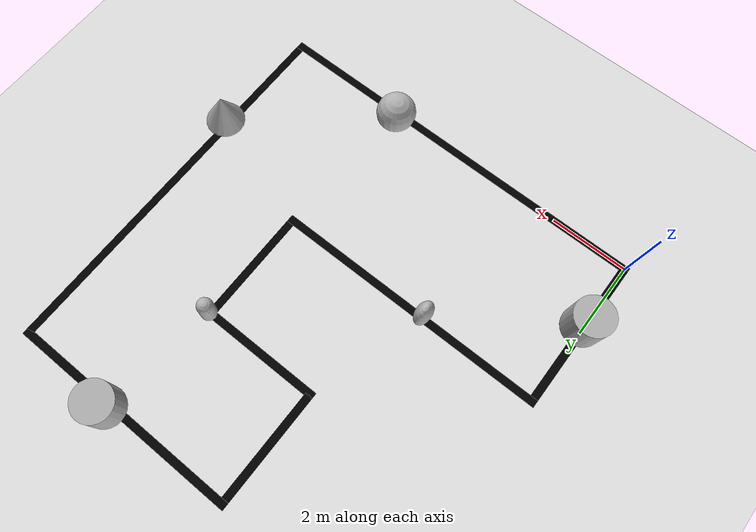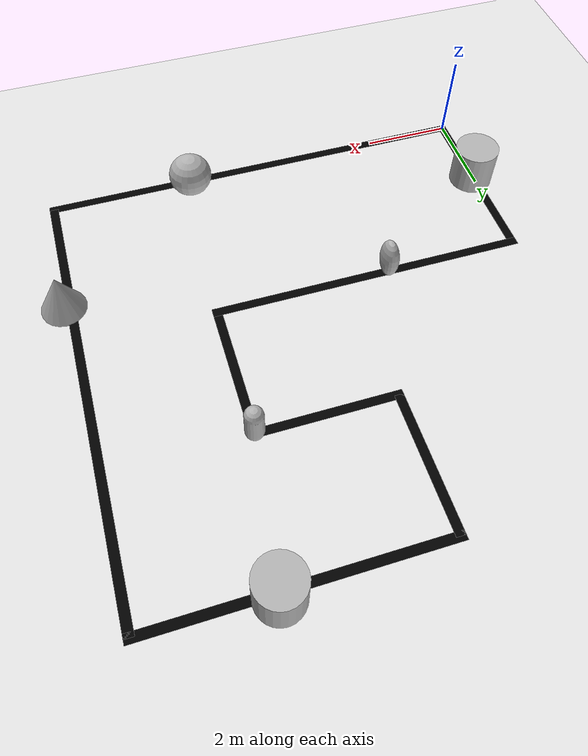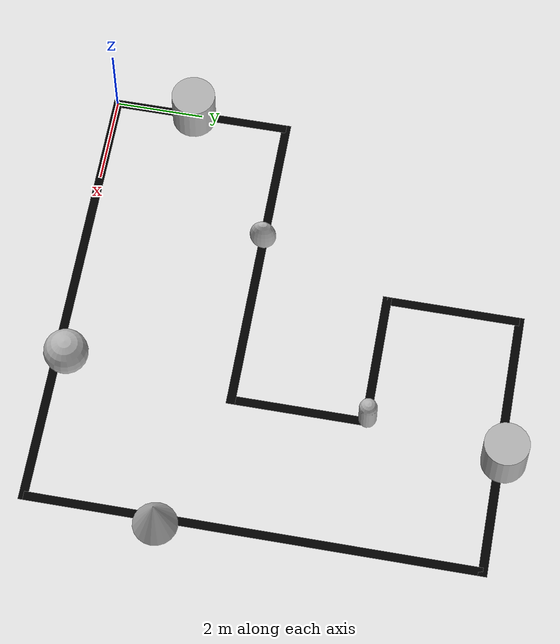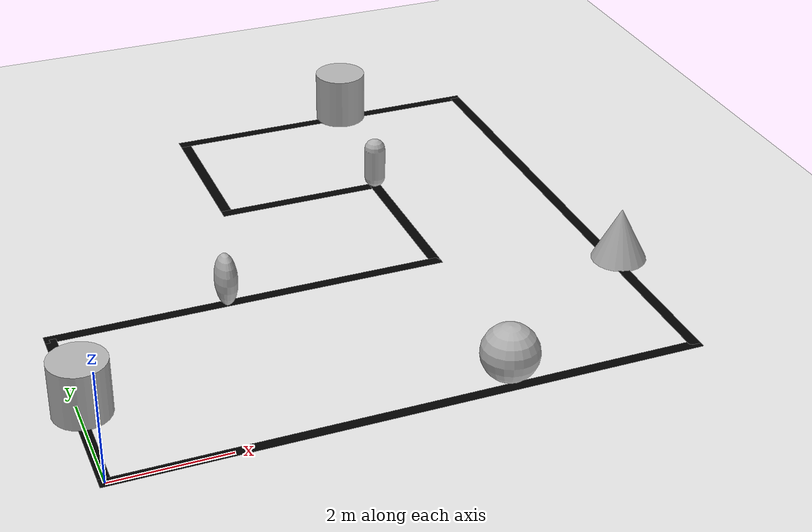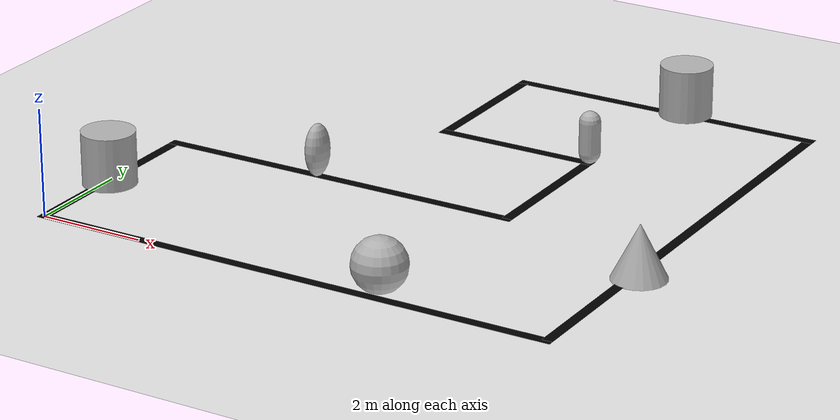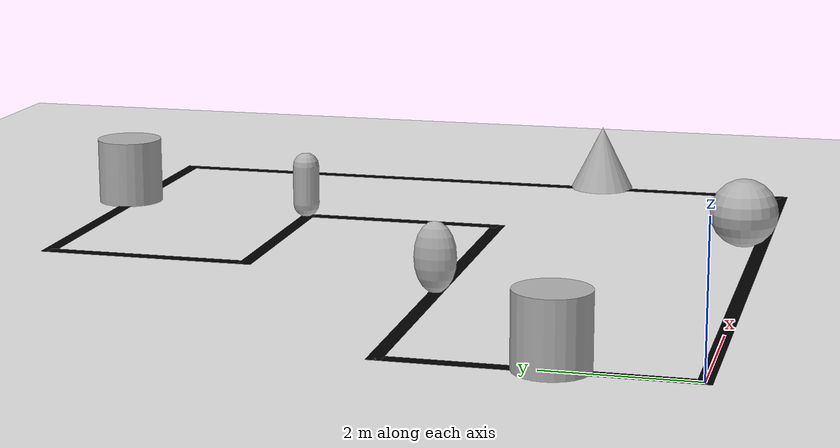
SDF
<sdf version='1.10'>
  <world name='obstacle_world'>
    <plugin name='gz::sim::systems::Physics' filename='gz-sim-physics-system'/>
    <plugin name='gz::sim::systems::UserCommands' filename='gz-sim-user-commands-system'/>
    <plugin name='gz::sim::systems::SceneBroadcaster' filename='gz-sim-scene-broadcaster-system'/>
    <plugin name='gz::sim::systems::Sensors' filename='gz-sim-sensors-system'>
      <render_engine>ogre2</render_engine>
    </plugin>
    <gravity>0 0 -9.8000000000000007</gravity>
    <magnetic_field>5.5644999999999998e-06 2.2875799999999999e-05 -4.2388400000000002e-05</magnetic_field>
    <atmosphere type='adiabatic'/>
    <physics type='ode'>
      <max_step_size>0.005</max_step_size>
      <real_time_factor>1</real_time_factor>
      <real_time_update_rate>500</real_time_update_rate>
    </physics>
    <scene>
      <ambient>0.400000006 0.400000006 0.400000006 1</ambient>
      <background>0.699999988 0.699999988 0.699999988 1</background>
      <shadows>true</shadows>
    </scene>

    <light name='sun' type='directional'>
      <pose>0 0 10 0 0 0</pose>
      <cast_shadows>true</cast_shadows>
      <intensity>1</intensity>
      <direction>0 0 -1</direction>
      <diffuse>1 1 1 1</diffuse>
      <specular>0.5 0.5 0.5 1</specular>
      <attenuation>
        <range>10</range>
        <linear>1</linear>
        <constant>1</constant>
        <quadratic>0</quadratic>
      </attenuation>
      <spot>
        <inner_angle>0</inner_angle>
        <outer_angle>0</outer_angle>
        <falloff>0</falloff>
      </spot>
    </light>

    <model name='ground_plane'>
      <static>true</static>
      <link name='ground'>
        <collision name='ground_collision'>
          <geometry>
            <plane>
              <normal>0 0 1</normal>
              <size>50 50</size>
            </plane>
          </geometry>
          <surface>
            <friction><ode/></friction>
            <bounce/>
            <contact/>
          </surface>
        </collision>
        <visual name='ground_visual'>
          <geometry>
            <plane>
              <normal>0 0 1</normal>
              <size>50 50</size>
            </plane>
          </geometry>
          <material>
            <ambient>0.899999976 0.899999976 0.899999976 1</ambient>
            <diffuse>0.899999976 0.899999976 0.899999976 1</diffuse>
          </material>
        </visual>
        <pose>0 0 0 0 0 0</pose>
        <inertial>
          <pose>0 0 0 0 0 0</pose>
          <mass>1</mass>
          <inertia>
            <ixx>1</ixx><ixy>0</ixy><ixz>0</ixz>
            <iyy>1</iyy><iyz>0</iyz><izz>1</izz>
          </inertia>
        </inertial>
      </link>
      <pose>0 0 0 0 0 0</pose>
      <self_collide>false</self_collide>
    </model>

    <model name='black_line_track'>
      <static>false</static>
      <link name='track_link'>
        <visual name='base_horizontal'>
          <pose>5 0 0.01 0 0 0</pose>
          <geometry><box><size>10.2 0.2 0.001</size></box></geometry>
          <material><ambient>0 0 0 1</ambient><diffuse>0 0 0 1</diffuse></material>
        </visual>
        <collision name='base_horizontal_collision'>
          <pose>5 0 0.01 0 0 0</pose>
          <geometry><box><size>10.2 0.2 0.001</size></box></geometry>
          <surface><friction><ode/></friction><bounce/><contact/></surface>
        </collision>

        <visual name='right_vertical'>
          <pose>10 5 0.01 0 0 1.5708</pose>
          <geometry><box><size>10 0.2 0.001</size></box></geometry>
          <material><ambient>0 0 0 1</ambient><diffuse>0 0 0 1</diffuse></material>
        </visual>
        <collision name='right_vertical_collision'>
          <pose>10 5 0.01 0 0 1.5708</pose>
          <geometry><box><size>10 0.2 0.001</size></box></geometry>
          <surface><friction><ode/></friction><bounce/><contact/></surface>
        </collision>

        <visual name='top_horizontal'>
          <pose>7 10 0.01 0 0 0</pose>
          <geometry><box><size>6.2 0.2 0.001</size></box></geometry>
          <material><ambient>0 0 0 1</ambient><diffuse>0 0 0 1</diffuse></material>
        </visual>
        <collision name='top_horizontal_collision'>
          <pose>7 10 0.01 0 0 0</pose>
          <geometry><box><size>6.2 0.2 0.001</size></box></geometry>
          <surface><friction><ode/></friction><bounce/><contact/></surface>
        </collision>

        <visual name='inner_vertical1'>
          <pose>4 8.5 0.01 0 0 1.5708</pose>
          <geometry><box><size>3 0.2 0.001</size></box></geometry>
          <material><ambient>0 0 0 1</ambient><diffuse>0 0 0 1</diffuse></material>
        </visual>
        <collision name='inner_vertical1_collision'>
          <pose>4 8.5 0.01 0 0 1.5708</pose>
          <geometry><box><size>3 0.2 0.001</size></box></geometry>
          <surface><friction><ode/></friction><bounce/><contact/></surface>
        </collision>

        <visual name='inner_horizontal'>
          <pose>5.5 7 0.01 0 0 0</pose>
          <geometry><box><size>3.2 0.2 0.001</size></box></geometry>
          <material><ambient>0 0 0 1</ambient><diffuse>0 0 0 1</diffuse></material>
        </visual>
        <collision name='inner_horizontal_collision'>
          <pose>5.5 7 0.01 0 0 0</pose>
          <geometry><box><size>3.2 0.2 0.001</size></box></geometry>
          <surface><friction><ode/></friction><bounce/><contact/></surface>
        </collision>

        <visual name='inner_vertical2'>
          <pose>7 5.5 0.01 0 0 1.5708</pose>
          <geometry><box><size>3 0.2 0.001</size></box></geometry>
          <material><ambient>0 0 0 1</ambient><diffuse>0 0 0 1</diffuse></material>
        </visual>
        <collision name='inner_vertical2_collision'>
          <pose>7 5.5 0.01 0 0 1.5708</pose>
          <geometry><box><size>3 0.2 0.001</size></box></geometry>
          <surface><friction><ode/></friction><bounce/><contact/></surface>
        </collision>

        <visual name='lower_horizontal'>
          <pose>3.5 4 0.01 0 0 0</pose>
          <geometry><box><size>7.2 0.2 0.001</size></box></geometry>
          <material><ambient>0 0 0 1</ambient><diffuse>0 0 0 1</diffuse></material>
        </visual>
        <collision name='lower_horizontal_collision'>
          <pose>3.5 4 0.01 0 0 0</pose>
          <geometry><box><size>7.2 0.2 0.001</size></box></geometry>
          <surface><friction><ode/></friction><bounce/><contact/></surface>
        </collision>

        <visual name='final_vertical'>
          <pose>0 2 0.01 0 0 1.5708</pose>
          <geometry><box><size>4 0.2 0.001</size></box></geometry>
          <material><ambient>0 0 0 1</ambient><diffuse>0 0 0 1</diffuse></material>
        </visual>
        <collision name='final_vertical_collision'>
          <pose>0 2 0.01 0 0 1.5708</pose>
          <geometry><box><size>4 0.2 0.001</size></box></geometry>
          <surface><friction><ode/></friction><bounce/><contact/></surface>
        </collision>

        <pose>0 0 0 0 0 0</pose>
        <inertial>
          <pose>0 0 0 0 0 0</pose>
          <mass>1</mass>
          <inertia>
            <ixx>1</ixx><ixy>0</ixy><ixz>0</ixz>
            <iyy>1</iyy><iyz>0</iyz><izz>1</izz>
          </inertia>
        </inertial>
      </link>
      <pose>0 0 0 0 0 0</pose>
      <self_collide>false</self_collide>
    </model>

    <model name='sphere'>
      <static>true</static>
      <pose>6.7 0.26 0.5 0 0 0</pose>
      <link name='sphere_link'>
        <collision name='sphere_collision'>
          <geometry><sphere><radius>0.5</radius></sphere></geometry>
          <surface><friction><ode/></friction><bounce/><contact/></surface>
        </collision>
        <visual name='sphere_visual'>
          <geometry><sphere><radius>0.5</radius></sphere></geometry>
          <material>
            <ambient>0.3 0.3 0.3 1</ambient>
            <diffuse>0.7 0.7 0.7 1</diffuse>
            <specular>1 1 1 1</specular>
          </material>
        </visual>
      </link>
      <self_collide>false</self_collide>
    </model>

    <model name='cone'>
      <static>true</static>
      <pose>10.14 2.93 0.5 0 0 0</pose>
      <link name='cone_link'>
        <collision name='cone_collision'>
          <geometry><cone><radius>0.5</radius><length>1</length></cone></geometry>
          <surface><friction><ode/></friction><bounce/><contact/></surface>
        </collision>
        <visual name='cone_visual'>
          <geometry><cone><radius>0.5</radius><length>1</length></cone></geometry>
          <material>
            <ambient>0.3 0.3 0.3 1</ambient>
            <diffuse>0.7 0.7 0.7 1</diffuse>
            <specular>1 1 1 1</specular>
          </material>
        </visual>
      </link>
      <self_collide>false</self_collide>
    </model>

    <model name='cylinder'>
      <static>true</static>
      <pose>7.41 10.09 0.5 0 0 0</pose>
      <link name='cylinder_link'>
        <collision name='cylinder_collision'>
          <geometry><cylinder><radius>0.5</radius><length>1</length></cylinder></geometry>
          <surface><friction><ode/></friction><bounce/><contact/></surface>
        </collision>
        <visual name='cylinder_visual'>
          <geometry><cylinder><radius>0.5</radius><length>1</length></cylinder></geometry>
          <material>
            <ambient>0.3 0.3 0.3 1</ambient>
            <diffuse>0.7 0.7 0.7 1</diffuse>
            <specular>1 1 1 1</specular>
          </material>
        </visual>
      </link>
      <self_collide>false</self_collide>
    </model>

    <model name='capsule'>
      <static>false</static>
      <pose>7.0 7.03 0.5 0 0 0</pose>
      <link name='capsule_link'>
        <collision name='capsule_collision'>
          <geometry><capsule><radius>0.2</radius><length>0.6</length></capsule></geometry>
          <surface><friction><ode/></friction><bounce/><contact/></surface>
        </collision>
        <visual name='capsule_visual'>
          <geometry><capsule><radius>0.2</radius><length>0.6</length></capsule></geometry>
          <material>
            <ambient>0.3 0.3 0.3 1</ambient>
            <diffuse>0.7 0.7 0.7 1</diffuse>
            <specular>1 1 1 1</specular>
          </material>
        </visual>
      </link>
      <self_collide>false</self_collide>
    </model>

    <model name='ellipsoid'>
      <static>false</static>
      <pose>3.09 4.01 0.5 0 0 0</pose>
      <link name='ellipsoid_link'>
        <collision name='ellipsoid_collision'>
          <geometry><ellipsoid><radii>0.2 0.3 0.5</radii></ellipsoid></geometry>
          <surface><friction><ode/></friction><bounce/><contact/></surface>
        </collision>
        <visual name='ellipsoid_visual'>
          <geometry><ellipsoid><radii>0.2 0.3 0.5</radii></ellipsoid></geometry>
          <material>
            <ambient>0.3 0.3 0.3 1</ambient>
            <diffuse>0.7 0.7 0.7 1</diffuse>
            <specular>1 1 1 1</specular>
          </material>
        </visual>
      </link>
      <self_collide>false</self_collide>
    </model>

    <model name='cylinder_0'>
      <static>false</static>
      <pose>0.07 1.84 0.5 0 0 0</pose>
      <link name='cylinder_link'>
        <collision name='cylinder_collision'>
          <geometry><cylinder><radius>0.5</radius><length>1</length></cylinder></geometry>
          <surface><friction><ode/></friction><bounce/><contact/></surface>
        </collision>
        <visual name='cylinder_visual'>
          <geometry><cylinder><radius>0.5</radius><length>1</length></cylinder></geometry>
          <material>
            <ambient>0.3 0.3 0.3 1</ambient>
            <diffuse>0.7 0.7 0.7 1</diffuse>
            <specular>1 1 1 1</specular>
          </material>
        </visual>
      </link>
      <self_collide>false</self_collide>
    </model>

  </world>
</sdf>
